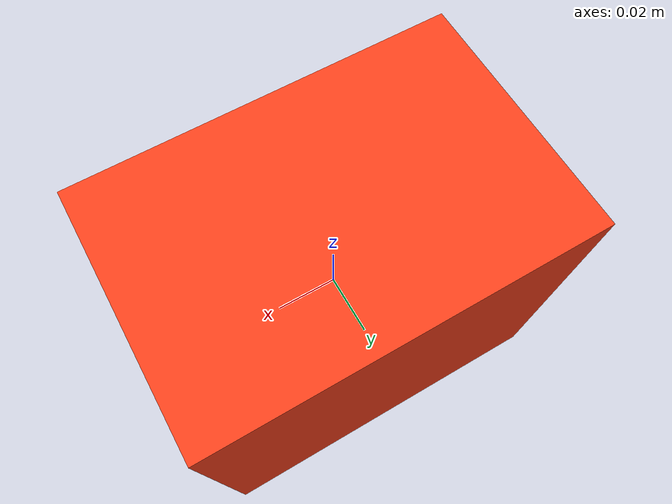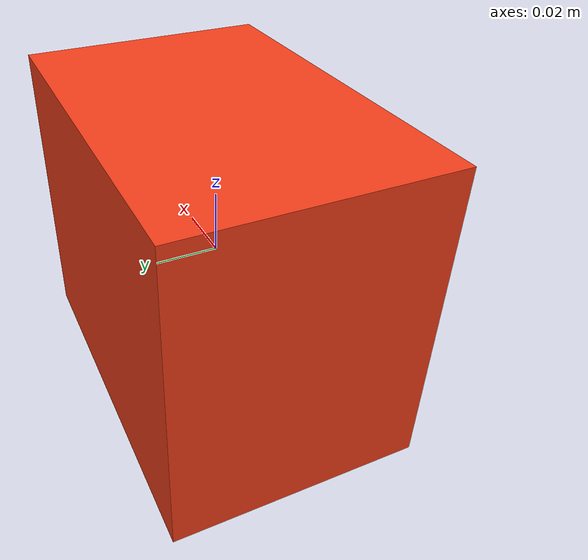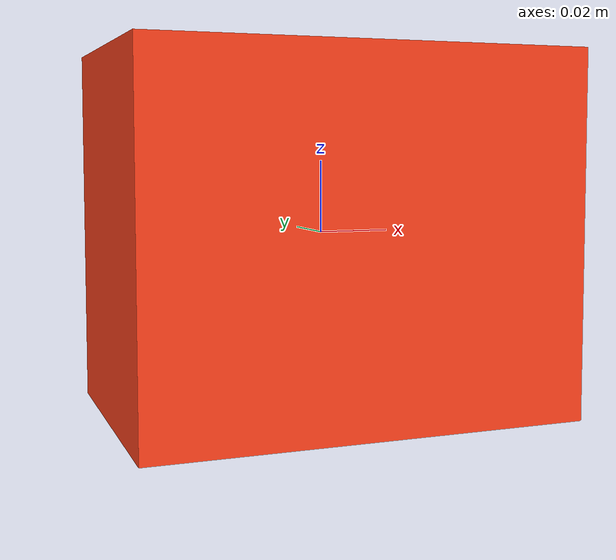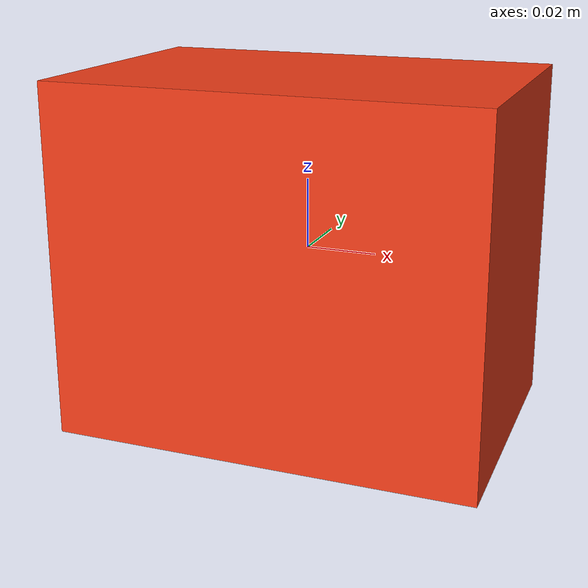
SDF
<?xml version="1.0"?>
<sdf version="1.8">
  <model name="pick_box">
    <link name="box">
      <inertial>
        <mass>0.20</mass>
        <inertia><ixx>0.00022</ixx><iyy>0.00028</iyy><izz>0.00032</izz></inertia>
      </inertial>
      <collision name="collision">
        <geometry><box><size>0.12 0.08 0.10</size></box></geometry>
        <surface><friction><ode><mu>0.9</mu><mu2>0.9</mu2></ode></friction></surface>
      </collision>
      <visual name="visual">
        <geometry><box><size>0.12 0.08 0.10</size></box></geometry>
        <material><ambient>0.72 0.16 0.08 1</ambient><diffuse>0.95 0.24 0.10 1</diffuse></material>
      </visual>
    </link>
  </model>
</sdf>
